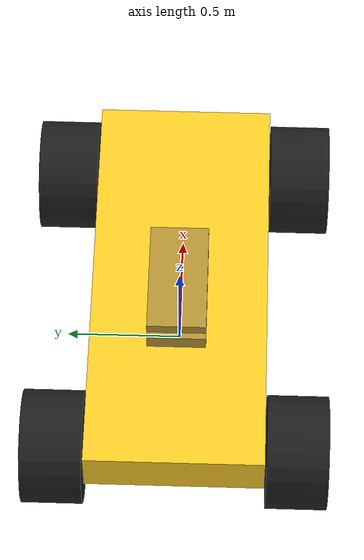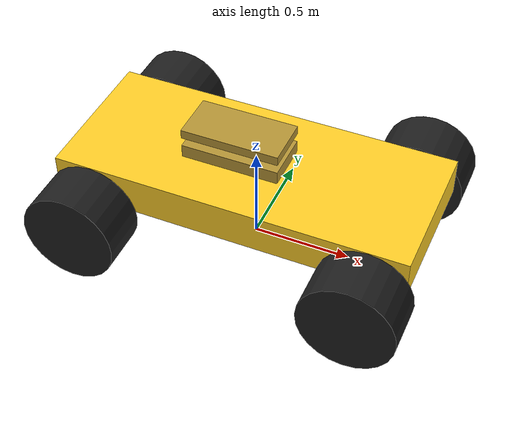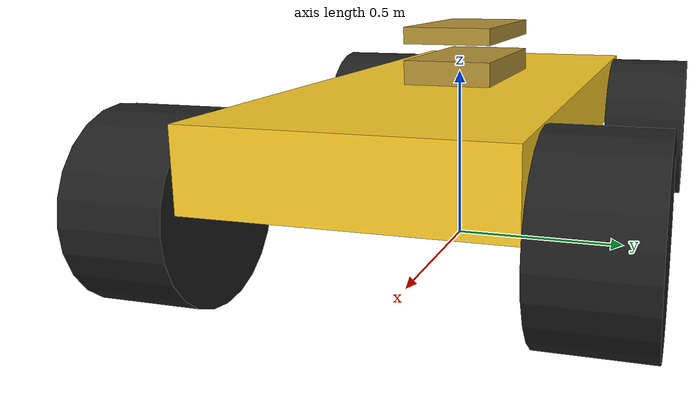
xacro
<?xml version="1.0"?>
<robot name="New Bot" xmlns:xacro="http://www.ros.org/wiki/xacro">

<!-- Bring in simulation data for Gazebo. -->
<xacro:include filename="$(find newbot_description)/urdf/newbot.gazebo" />
<xacro:include filename="$(find newbot_description)/urdf/materials.xacro" />

<!-- Properties -->
<xacro:property name="PI" value="3.1415926535897931" />

<!-- change the inertia for the URDF when finished-->

<link name="base_link"></link>

<!-- chasis -->

<link name="chassis_link">

	<visual>
	 <origin xyz="0 0 0"/>
	 <geometry>
     <box size="1.8 0.755 0.2" />
	 </geometry>
	 <material name="body" />
	</visual>

	<collision>
	 <origin xyz="0 0 0"/>
	 <geometry>
	   <box size="1.8 0.755 0.2" />
	 </geometry>
	</collision>

	<inertial>
	 <origin xyz="0.0422171696051465 0.00189728780308063 -0.0378333807867307" rpy="0 0 0"/>
	 <mass value="16.523"/>
	 <inertia ixx="0.3136" ixy="-0.0008" ixz="0.0164" iyy="0.3922" iyz="-0.0009" izz="0.4485"/>
  </inertial>

</link>

<joint name="chasis_link_joint" type="fixed">
	<origin xyz="0 0 0.375" rpy="0 0 0" />
	<parent link="base_link"/>
	<child link="chassis_link"/>
</joint>

<!--wheel-->

<xacro:macro name="wheel" params="prefix *joint_pose">

<link name="${prefix}_wheel_link">
      <visual>
        <origin xyz="0 0 0" rpy="${PI/2} 0 0"/>
        <geometry>
          <cylinder length="0.26" radius="0.24"/>
        </geometry>
        <material name="wheels"/>
      </visual>

      <collision>
        <origin xyz="0 0 0" rpy="${PI/2} 0 0"/>
        <geometry>
          <cylinder length="0.26" radius="0.24"/>
        </geometry>
      </collision>

      <inertial>
        <origin xyz="9.1812e-6 1.0274e-6 -4.4809e-6" rpy="0 0 0"/>
        <mass value="0.477"/>
        <inertia ixx="0.0013" ixy="0" ixz="0" iyy="0.0024" iyz="0" izz="0.0013"/>
      </inertial>

</link>

    <gazebo reference="${prefix}_wheel_link">
      <mu1>0.2</mu1>
      <mu2>0.2</mu2>
      <material>Gazebo/DarkGrey</material>
    </gazebo>

	<joint name="${prefix}_wheel" type="continuous">
    	  <parent link="base_link"/>
    	  <child link="${prefix}_wheel_link" />
    	  <xacro:insert_block name="joint_pose" />
   	   <axis xyz="0 1 0" />
	</joint>

    <!--
      Gazebo needs the following code
      for each wheel to be actuatored
    -->

	<transmission name="${prefix}_wheel_trans">
    	  <type>transmission_interface/SimpleTransmission</type>
   	   <joint name="${prefix}_wheel">
   	     <hardwareInterface>EffortJointInterface</hardwareInterface>
   	   </joint>
   	   <actuator name="${prefix}_actuator">
		<hardwareInterface>EffortJointInterface</hardwareInterface>
   	     <mechanicalReduction>1</mechanicalReduction>
   	   </actuator>
   	</transmission>
</xacro:macro>

  <xacro:wheel prefix="front_left">
    <origin xyz="0.70465 0.51502 0.23923" rpy="0 0 0" />
  </xacro:wheel>
  <xacro:wheel prefix="front_right">
    <origin xyz="0.70465 -0.51501 0.23923" rpy="0 0 0" />
  </xacro:wheel>
  <xacro:wheel prefix="rear_left">
    <origin xyz="-0.70542 0.51502 0.23923" rpy="0 0 0" />
  </xacro:wheel>
  <xacro:wheel prefix="rear_right">
    <origin xyz="-0.70542 -0.51501 0.23923" rpy="0 0 0" />
  </xacro:wheel>

<!-- wheels section closed -->>

<!-- laser base -->

  <joint name="camera_joint" type="fixed">
    <origin xyz="-0.091106 0.0056361 0.49357" rpy="0 0 0"/>
    <parent link="base_link"/>
    <child link="camera_link"/>
  </joint>

  <link name="camera_link">
    <collision>
	<!-- re edit the position in collision to not collide with the chasis in origin z location-->
      <origin xyz="0 0 0.04" rpy="0 0 0"/>
      <geometry>
	      <box size="0.5 0.25 0.1" />
      </geometry>
    </collision>

    <visual>

      <origin xyz="0 0 0" rpy="0 0 0"/>
      <geometry>
        <box size="0.5 0.25 0.1" />
      </geometry>
      <material name="top"/>
    </visual>

    <inertial>
      <mass value="1e-5" />
      <origin xyz="-7.2868e-8 -3.9636e-6 0.013631" rpy="0 0 0"/>
      <inertia ixx="1e-6" ixy="0" ixz="0" iyy="1e-6" iyz="0" izz="1e-6" />
    </inertial>
  </link>

<!-- Hokuyo Laser -->

 <joint name="hokuyo_joint" type="fixed">
    <origin xyz="0 0 0.12" rpy="0 0 0"/>
    <parent link="camera_link"/>
    <child link="laser_link"/>
  </joint>

  <link name="laser_link">
    <collision>
      <origin xyz="0 0 0.05" rpy="0 0 0"/>
      <geometry>
	<box size="0.5 0.25 0.047" />
      </geometry>
    </collision>

    <visual>
      <origin xyz="0 0 0" rpy="0 0 0"/>
      <geometry>
  <box size="0.5 0.25 0.047" />
      </geometry>
	<material name="top"/>
    </visual>

    <inertial>
      <mass value="1e-5" />
      <origin xyz="-5.7094e-7 -8.9157e-6 0.1" rpy="0 0 0"/>
      <inertia ixx="1e-6" ixy="0" ixz="0" iyy="1e-6" iyz="0" izz="1e-6"/>
    </inertial>
  </link>

</robot>

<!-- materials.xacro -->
<robot>
	<material name="top">
		<color rgba="0.715 0.583 0.210 1.0"/>
	</material>

	<material name="body">
		<color rgba="1.0 0.811 0.151 1.0"/>
	</material>

	<material name="wheels">
		<color rgba="0.117 0.117 0.117 1.0"/>
	</material>

</robot>
